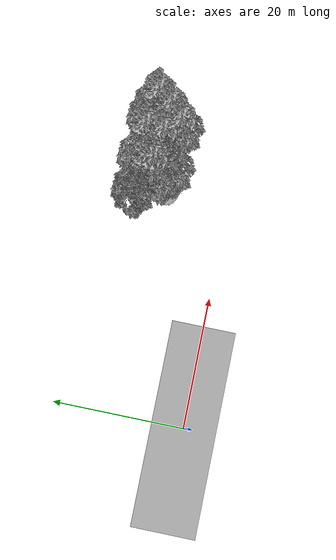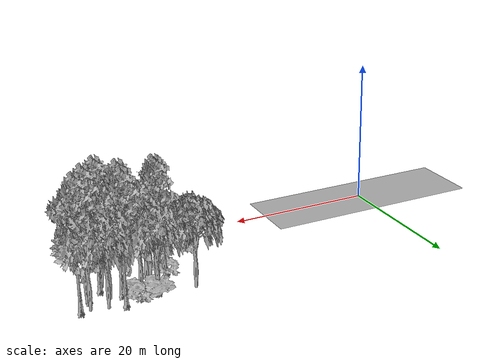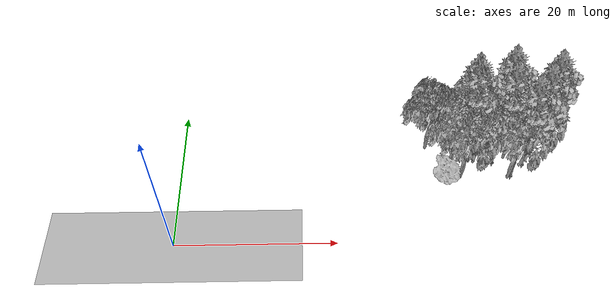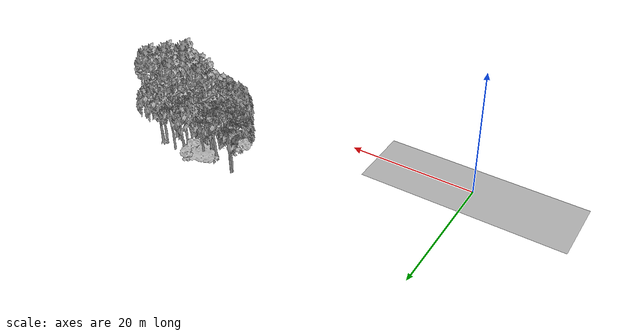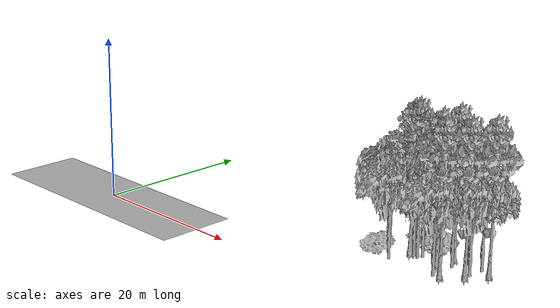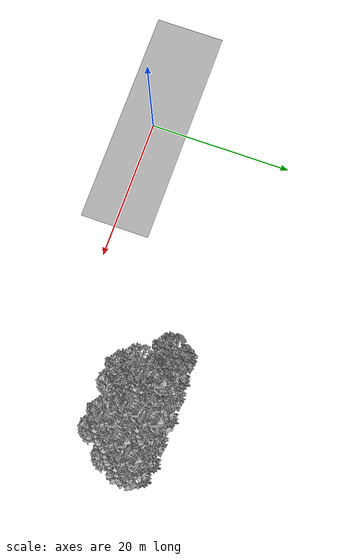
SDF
<sdf version="1.7">
 <world name="default">
  <model name="ground_plane">
   <static>1</static>
   <link name="link">
    <collision name="collision">
     <pose>-50 0 0 0 -0 0</pose>
     <geometry><plane><normal>0 0 1</normal><size>100 100</size></plane></geometry>
     <surface><contact><ode><min_depth>0.01</min_depth><max_vel>0</max_vel></ode></contact></surface>
    </collision>
    <visual name="grass">
     <cast_shadows>0</cast_shadows>
     <geometry>
      <mesh>
       <scale>0.5814285714285714 0.18142857142857144 0.1</scale>
       <uri>file://grass_plane/meshes/grass_plane.dae</uri>
      </mesh>
     </geometry>
    </visual>
   </link>
  </model>
  <model name="Tree 22">
   <static>1</static>
   <pose>37.27590467422013 14.803807255800841 0 1.57079 -0 0</pose>
   <link name="link">
    <collision name="collision">
     <geometry><mesh><scale>3.5 5 3.5</scale><uri>model://tree_2/meshes/tree_2.obj</uri></mesh></geometry>
    </collision>
    <visual name="visual">
     <geometry><mesh><scale>3.5 5 3.5</scale><uri>model://tree_2/meshes/tree_2.obj</uri></mesh></geometry>
    </visual>
   </link>
  </model>
  <model name="Tree 59">
   <static>1</static>
   <pose>36.8122384690154 13.566730265755996 0 1.57079 -0 0</pose>
   <link name="link">
    <collision name="collision">
     <geometry><mesh><scale>3.5 5 3.5</scale><uri>model://tree_9/meshes/tree_9.obj</uri></mesh></geometry>
    </collision>
    <visual name="visual">
     <geometry><mesh><scale>3.5 5 3.5</scale><uri>model://tree_9/meshes/tree_9.obj</uri></mesh></geometry>
    </visual>
   </link>
  </model>
  <model name="Tree 62">
   <static>1</static>
   <pose>32.24959429622477 14.464510824635425 0 1.57079 -0 0</pose>
   <link name="link">
    <collision name="collision">
     <geometry><mesh><scale>3.5 5 3.5</scale><uri>model://tree_2/meshes/tree_2.obj</uri></mesh></geometry>
    </collision>
    <visual name="visual">
     <geometry><mesh><scale>3.5 5 3.5</scale><uri>model://tree_2/meshes/tree_2.obj</uri></mesh></geometry>
    </visual>
   </link>
  </model>
  <model name="Tree 72">
   <static>1</static>
   <pose>45.15757861768117 12.160611142548461 0 1.57079 -0 0</pose>
   <link name="link">
    <collision name="collision">
     <geometry><mesh><scale>3.5 5 3.5</scale><uri>model://tree_2/meshes/tree_2.obj</uri></mesh></geometry>
    </collision>
    <visual name="visual">
     <geometry><mesh><scale>3.5 5 3.5</scale><uri>model://tree_2/meshes/tree_2.obj</uri></mesh></geometry>
    </visual>
   </link>
  </model>
  <model name="Tree 75">
   <static>1</static>
   <pose>38.58751836044442 12.576465636743563 0 1.57079 -0 0</pose>
   <link name="link">
    <collision name="collision">
     <geometry><mesh><scale>3.5 5 3.5</scale><uri>model://tree_2/meshes/tree_2.obj</uri></mesh></geometry>
    </collision>
    <visual name="visual">
     <geometry><mesh><scale>3.5 5 3.5</scale><uri>model://tree_2/meshes/tree_2.obj</uri></mesh></geometry>
    </visual>
   </link>
  </model>
  <model name="Tree 90">
   <static>1</static>
   <pose>32.33813323700279 14.624044084339488 0 1.57079 -0 0</pose>
   <link name="link">
    <collision name="collision">
     <geometry><mesh><scale>3.5 5 3.5</scale><uri>model://tree_2/meshes/tree_2.obj</uri></mesh></geometry>
    </collision>
    <visual name="visual">
     <geometry><mesh><scale>3.5 5 3.5</scale><uri>model://tree_2/meshes/tree_2.obj</uri></mesh></geometry>
    </visual>
   </link>
  </model>
  <model name="Tree 101">
   <static>1</static>
   <pose>40.96211007042447 12.20655147062919 0 1.57079 -0 0</pose>
   <link name="link">
    <collision name="collision">
     <geometry><mesh><scale>3.5 5 3.5</scale><uri>model://tree_9/meshes/tree_9.obj</uri></mesh></geometry>
    </collision>
    <visual name="visual">
     <geometry><mesh><scale>3.5 5 3.5</scale><uri>model://tree_9/meshes/tree_9.obj</uri></mesh></geometry>
    </visual>
   </link>
  </model>
  <model name="Tree 105">
   <static>1</static>
   <pose>38.34708095587973 11.987992093369876 0 1.57079 -0 0</pose>
   <link name="link">
    <collision name="collision">
     <geometry><mesh><scale>3.5 5 3.5</scale><uri>model://tree_2/meshes/tree_2.obj</uri></mesh></geometry>
    </collision>
    <visual name="visual">
     <geometry><mesh><scale>3.5 5 3.5</scale><uri>model://tree_2/meshes/tree_2.obj</uri></mesh></geometry>
    </visual>
   </link>
  </model>
  <model name="Tree 121">
   <static>1</static>
   <pose>43.013129138967344 9.990635601441262 0 1.57079 -0 0</pose>
   <link name="link">
    <collision name="collision">
     <geometry><mesh><scale>3.5 5 3.5</scale><uri>model://tree_9/meshes/tree_9.obj</uri></mesh></geometry>
    </collision>
    <visual name="visual">
     <geometry><mesh><scale>3.5 5 3.5</scale><uri>model://tree_9/meshes/tree_9.obj</uri></mesh></geometry>
    </visual>
   </link>
  </model>
  <model name="Tree 211">
   <static>1</static>
   <pose>34.39441273711607 9.982410256075667 0 1.57079 -0 0</pose>
   <link name="link">
    <collision name="collision">
     <geometry><mesh><scale>4 2.5 4</scale><uri>model://tree_1/meshes/tree_1.obj</uri></mesh></geometry>
    </collision>
    <visual name="visual">
     <geometry><mesh><scale>4 2.5 4</scale><uri>model://tree_1/meshes/tree_1.obj</uri></mesh></geometry>
    </visual>
   </link>
  </model>
  <model name="Tree 234">
   <static>1</static>
   <pose>35.01363283630458 11.050320128045026 0 1.57079 -0 0</pose>
   <link name="link">
    <collision name="collision">
     <geometry><mesh><scale>3.5 5 3.5</scale><uri>model://tree_2/meshes/tree_2.obj</uri></mesh></geometry>
    </collision>
    <visual name="visual">
     <geometry><mesh><scale>3.5 5 3.5</scale><uri>model://tree_2/meshes/tree_2.obj</uri></mesh></geometry>
    </visual>
   </link>
  </model>
  <model name="Tree 251">
   <static>1</static>
   <pose>45.314380045611244 14.127783794258175 0 1.57079 -0 0</pose>
   <link name="link">
    <collision name="collision">
     <geometry><mesh><scale>3.5 5 3.5</scale><uri>model://tree_2/meshes/tree_2.obj</uri></mesh></geometry>
    </collision>
    <visual name="visual">
     <geometry><mesh><scale>3.5 5 3.5</scale><uri>model://tree_2/meshes/tree_2.obj</uri></mesh></geometry>
    </visual>
   </link>
  </model>
  <model name="Tree 295">
   <static>1</static>
   <pose>42.46263556689023 9.417777355209783 0 1.57079 -0 0</pose>
   <link name="link">
    <collision name="collision">
     <geometry><mesh><scale>3.5 5 3.5</scale><uri>model://tree_2/meshes/tree_2.obj</uri></mesh></geometry>
    </collision>
    <visual name="visual">
     <geometry><mesh><scale>3.5 5 3.5</scale><uri>model://tree_2/meshes/tree_2.obj</uri></mesh></geometry>
    </visual>
   </link>
  </model>
  <model name="Tree 309">
   <static>1</static>
   <pose>39.59695026783203 14.630556267840404 0 1.57079 -0 0</pose>
   <link name="link">
    <collision name="collision">
     <geometry><mesh><scale>4 2.5 4</scale><uri>model://tree_1/meshes/tree_1.obj</uri></mesh></geometry>
    </collision>
    <visual name="visual">
     <geometry><mesh><scale>4 2.5 4</scale><uri>model://tree_1/meshes/tree_1.obj</uri></mesh></geometry>
    </visual>
   </link>
  </model>
  <model name="Tree 331">
   <static>1</static>
   <pose>37.72102553668324 12.153526690979529 0 1.57079 -0 0</pose>
   <link name="link">
    <collision name="collision">
     <geometry><mesh><scale>3.5 5 3.5</scale><uri>model://tree_2/meshes/tree_2.obj</uri></mesh></geometry>
    </collision>
    <visual name="visual">
     <geometry><mesh><scale>3.5 5 3.5</scale><uri>model://tree_2/meshes/tree_2.obj</uri></mesh></geometry>
    </visual>
   </link>
  </model>
  <model name="Tree 338">
   <static>1</static>
   <pose>36.797745350695465 12.787106500918586 0 1.57079 -0 0</pose>
   <link name="link">
    <collision name="collision">
     <geometry><mesh><scale>3.5 5 3.5</scale><uri>model://tree_9/meshes/tree_9.obj</uri></mesh></geometry>
    </collision>
    <visual name="visual">
     <geometry><mesh><scale>3.5 5 3.5</scale><uri>model://tree_9/meshes/tree_9.obj</uri></mesh></geometry>
    </visual>
   </link>
  </model>
  <model name="Tree 399">
   <static>1</static>
   <pose>44.90819569184961 11.820292838741377 0 1.57079 -0 0</pose>
   <link name="link">
    <collision name="collision">
     <geometry><mesh><scale>3.5 5 3.5</scale><uri>model://tree_9/meshes/tree_9.obj</uri></mesh></geometry>
    </collision>
    <visual name="visual">
     <geometry><mesh><scale>3.5 5 3.5</scale><uri>model://tree_9/meshes/tree_9.obj</uri></mesh></geometry>
    </visual>
   </link>
  </model>
  <model name="Tree 418">
   <static>1</static>
   <pose>36.31514908107516 9.577479783684343 0 1.57079 -0 0</pose>
   <link name="link">
    <collision name="collision">
     <geometry><mesh><scale>3.5 5 3.5</scale><uri>model://tree_2/meshes/tree_2.obj</uri></mesh></geometry>
    </collision>
    <visual name="visual">
     <geometry><mesh><scale>3.5 5 3.5</scale><uri>model://tree_2/meshes/tree_2.obj</uri></mesh></geometry>
    </visual>
   </link>
  </model>
  <model name="Tree 455">
   <static>1</static>
   <pose>41.311266213686096 14.768331111774813 0 1.57079 -0 0</pose>
   <link name="link">
    <collision name="collision">
     <geometry><mesh><scale>3.5 5 3.5</scale><uri>model://tree_9/meshes/tree_9.obj</uri></mesh></geometry>
    </collision>
    <visual name="visual">
     <geometry><mesh><scale>3.5 5 3.5</scale><uri>model://tree_9/meshes/tree_9.obj</uri></mesh></geometry>
    </visual>
   </link>
  </model>
  <model name="Tree 482">
   <static>1</static>
   <pose>43.26381046098989 14.623807144449607 0 1.57079 -0 0</pose>
   <link name="link">
    <collision name="collision">
     <geometry><mesh><scale>3.5 5 3.5</scale><uri>model://tree_2/meshes/tree_2.obj</uri></mesh></geometry>
    </collision>
    <visual name="visual">
     <geometry><mesh><scale>3.5 5 3.5</scale><uri>model://tree_2/meshes/tree_2.obj</uri></mesh></geometry>
    </visual>
   </link>
  </model>
  <model name="Tree 493">
   <static>1</static>
   <pose>46.510213451948715 13.915013982559252 0 1.57079 -0 0</pose>
   <link name="link">
    <collision name="collision">
     <geometry><mesh><scale>3.5 5 3.5</scale><uri>model://tree_9/meshes/tree_9.obj</uri></mesh></geometry>
    </collision>
    <visual name="visual">
     <geometry><mesh><scale>3.5 5 3.5</scale><uri>model://tree_9/meshes/tree_9.obj</uri></mesh></geometry>
    </visual>
   </link>
  </model>
  <model name="Tree 504">
   <static>1</static>
   <pose>42.49186514313824 12.663096033175144 0 1.57079 -0 0</pose>
   <link name="link">
    <collision name="collision">
     <geometry><mesh><scale>3.5 5 3.5</scale><uri>model://tree_2/meshes/tree_2.obj</uri></mesh></geometry>
    </collision>
    <visual name="visual">
     <geometry><mesh><scale>3.5 5 3.5</scale><uri>model://tree_2/meshes/tree_2.obj</uri></mesh></geometry>
    </visual>
   </link>
  </model>
  <model name="Tree 526">
   <static>1</static>
   <pose>37.55141812981189 14.482552568222449 0 1.57079 -0 0</pose>
   <link name="link">
    <collision name="collision">
     <geometry><mesh><scale>3 2 3</scale><uri>model://tree_3/meshes/tree_3.obj</uri></mesh></geometry>
    </collision>
    <visual name="visual">
     <geometry><mesh><scale>3 2 3</scale><uri>model://tree_3/meshes/tree_3.obj</uri></mesh></geometry>
    </visual>
   </link>
  </model>
 </world>
</sdf>
